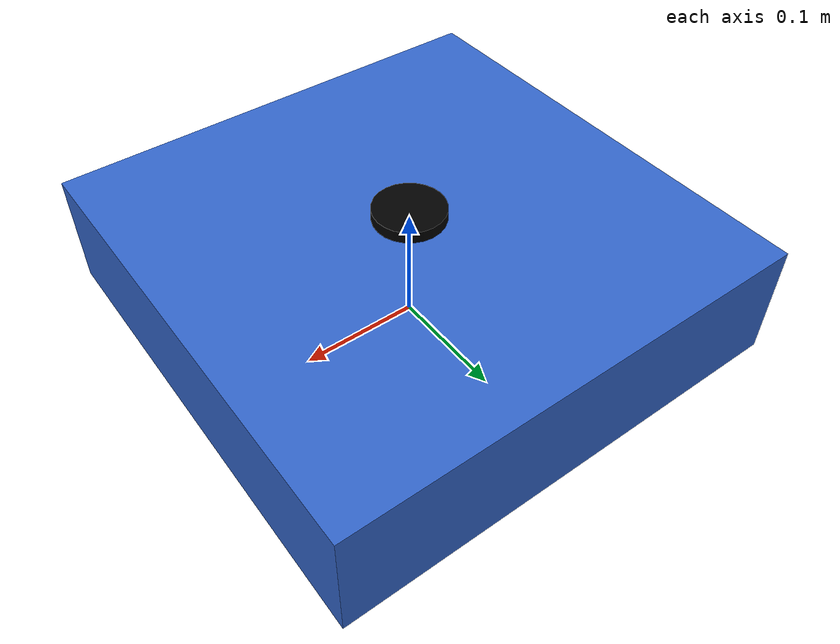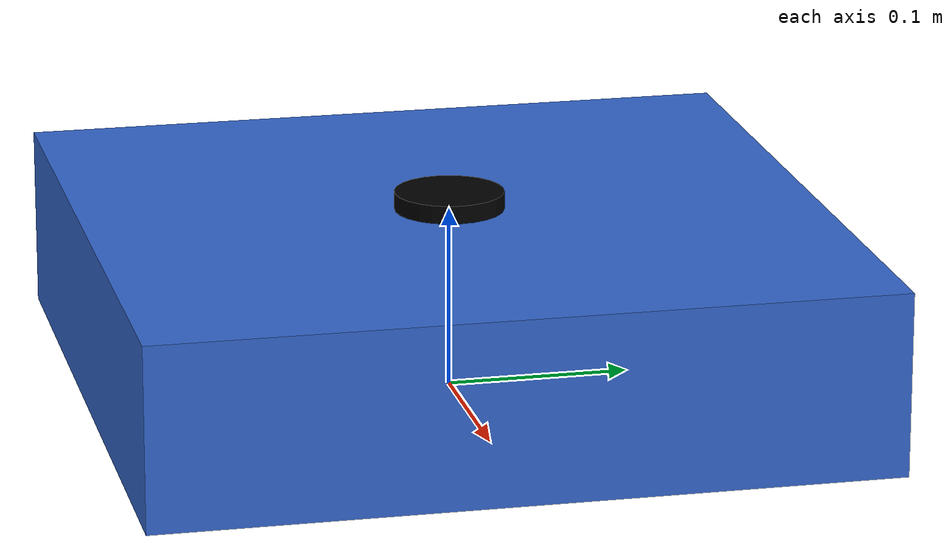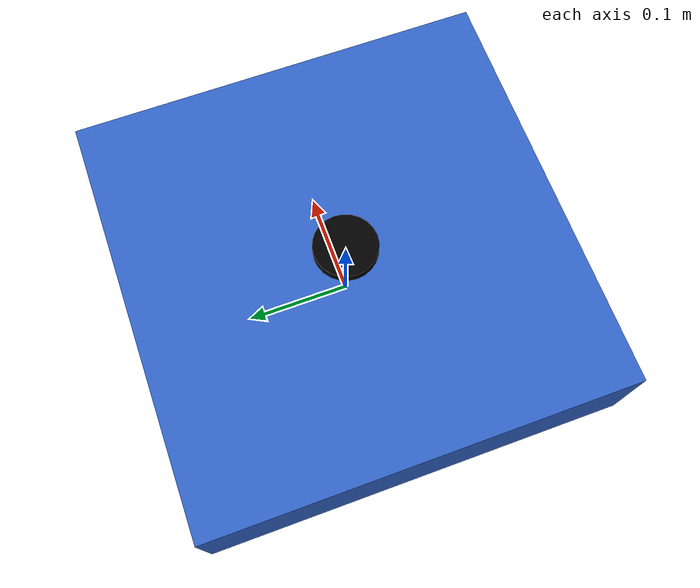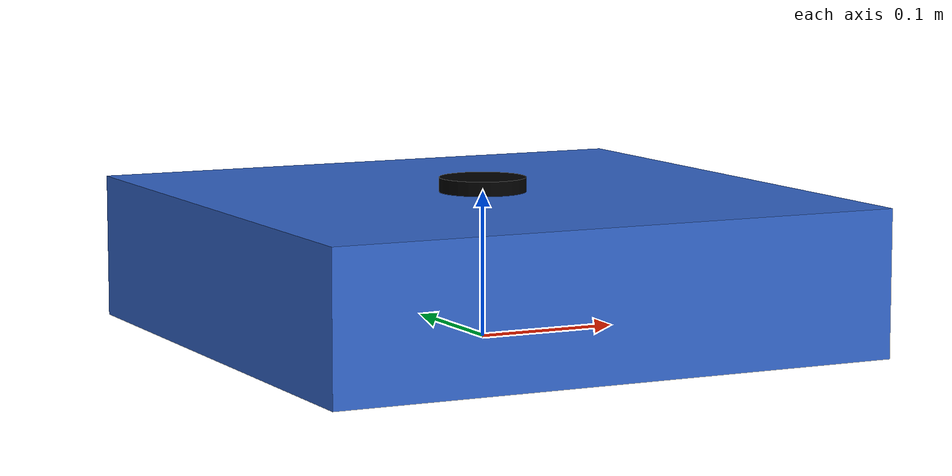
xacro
<?xml version="1.0"?>
<robot xmlns:xacro="http://ros.org/wiki/xacro" name="r2myrobot">

  <xacro:property name="base_size" value="0.4"/>
  <xacro:property name="base_height" value="0.1"/>
  <xacro:property name="lidar_x" value="0.0"/>
  <xacro:property name="lidar_y" value="0.0"/>
  <xacro:property name="lidar_z" value="0.1"/>
  <xacro:property name="lidar_yaw" value="0.0"/>

  <!-- base_footprint is an empty frame (2D origin) -->
  <link name="base_footprint"/>

  <link name="base_link">
    <visual>
      <origin xyz="0 0 ${base_height/2}" rpy="0 0 0"/>
      <geometry>
        <box size="${base_size} ${base_size} ${base_height}"/>
      </geometry>
      <material name="blue">
        <color rgba="0.2 0.4 0.8 1.0"/>
      </material>
    </visual>
    <collision>
      <origin xyz="0 0 ${base_height/2}" rpy="0 0 0"/>
      <geometry>
        <box size="${base_size} ${base_size} ${base_height}"/>
      </geometry>
    </collision>
    <inertial>
      <mass value="2.0"/>
      <inertia ixx="0.01" ixy="0.0" ixz="0.0" iyy="0.01" iyz="0.0" izz="0.02"/>
    </inertial>
  </link>

  <!-- Fixed joint from base_footprint -> base_link (to preserve 2D origin semantics) -->
  <joint name="base_footprint_to_base_link" type="fixed">
    <parent link="base_footprint"/>
    <child link="base_link"/>
    <origin xyz="0 0 0" rpy="0 0 0"/>
  </joint>

  <!-- lidar link (fixed joint relative to base_link) -->
  <link name="lidar_link">
    <visual>
      <origin xyz="0 0 0" rpy="0 0 0"/>
      <geometry>
        <cylinder length="0.02" radius="0.03"/>
      </geometry>
      <material name="black">
        <color rgba="0 0 0 1.0"/>
      </material>
    </visual>
  </link>

  <joint name="base_link_to_lidar" type="fixed">
    <parent link="base_link"/>
    <child link="lidar_link"/>
    <origin xyz="${lidar_x} ${lidar_y} ${lidar_z}" rpy="0 0 ${lidar_yaw}"/>
  </joint>

</robot>
